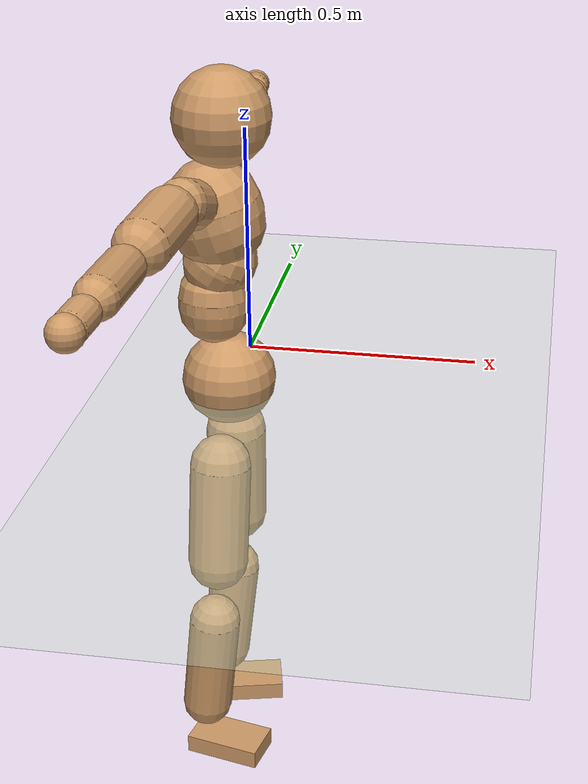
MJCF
<mujoco model="humanoid">
  <compiler coordinate="local"/>
  <default>
    <joint damping="0.0" armature="0.01" stiffness="0.0" limited="true"/>
    <geom conaffinity="1" condim="3" contype="7" margin="0.001" rgba="0.8 0.6 .4 1"/>
  </default>
  <asset>
    <texture type="skybox" builtin="gradient" rgb1=".4 .5 .6" rgb2="0 0 0" width="100" height="100"/>
    <texture builtin="flat" height="1278" mark="cross" markrgb="1 1 1" name="texgeom" random="0.01" rgb1="0.8 0.6 0.4" rgb2="0.8 0.6 0.4" type="cube" width="127"/>
    <texture builtin="checker" height="100" name="texplane" rgb1="0 0 0" rgb2="0.8 0.8 0.8" type="2d" width="100"/>
    <material name="MatPlane" reflectance="0.5" shininess="1" specular="1" texrepeat="60 60" texture="texplane"/>
    <material name="geom" texture="texgeom" texuniform="true"/>
  </asset>
  <worldbody>
    <light cutoff="100" diffuse="1 1 1" dir="-0 0 -1.3" directional="true" exponent="1" pos="0 0 1.3" specular=".1 .1 .1"/>
    <geom conaffinity="1" condim="3" name="floor" pos="0 0 0" rgba="0.8 0.9 0.8 1" size="100 100 .2" type="plane" material="MatPlane"/>
    <body name="Pelvis" pos="0.0002 -0.214 0.0298">
      <freejoint name="Pelvis"/>
      <geom type="sphere" contype="1" conaffinity="1" density="500" size="0.0981" pos="0.0000 0.0000 0.0000" name="Pelvis"/>
      <body name="L_Hip" pos="-0.0058 0.0759 -0.0921">
        <joint name="L_Hip_x" type="hinge" pos="0 0 0" axis="1 0 0" stiffness="800" damping="80" armature="0.02" range="-180.0000 180.0000"/>
        <joint name="L_Hip_y" type="hinge" pos="0 0 0" axis="0 1 0" stiffness="800" damping="80" armature="0.02" range="-180.0000 180.0000"/>
        <joint name="L_Hip_z" type="hinge" pos="0 0 0" axis="0 0 1" stiffness="800" damping="80" armature="0.02" range="-180.0000 180.0000"/>
        <geom type="capsule" contype="1" conaffinity="1" density="500" fromto="-0.0020 0.0062 -0.0742 -0.0079 0.0248 -0.2969" size="0.0647" name="L_Hip"/>
        <body name="L_Knee" pos="-0.0099 0.031 -0.3711">
          <joint name="L_Knee_x" type="hinge" pos="0 0 0" axis="1 0 0" stiffness="800" damping="80" armature="0.02" range="-180.0000 180.0000"/>
          <joint name="L_Knee_y" type="hinge" pos="0 0 0" axis="0 1 0" stiffness="800" damping="80" armature="0.02" range="-180.0000 180.0000"/>
          <joint name="L_Knee_z" type="hinge" pos="0 0 0" axis="0 0 1" stiffness="800" damping="80" armature="0.02" range="-180.0000 180.0000"/>
          <geom type="capsule" contype="1" conaffinity="1" density="500" fromto="-0.0091 -0.0022 -0.0774 -0.0365 -0.0089 -0.3095" size="0.0549" name="L_Knee"/>
          <body name="L_Ankle" pos="-0.0456 -0.0111 -0.3868">
            <joint name="L_Ankle_x" type="hinge" pos="0 0 0" axis="1 0 0" stiffness="800" damping="80" armature="0.02" range="-180.0000 180.0000"/>
            <joint name="L_Ankle_y" type="hinge" pos="0 0 0" axis="0 1 0" stiffness="800" damping="80" armature="0.02" range="-180.0000 180.0000"/>
            <joint name="L_Ankle_z" type="hinge" pos="0 0 0" axis="0 0 1" stiffness="800" damping="80" armature="0.02" range="-180.0000 180.0000"/>
            <geom type="box" contype="1" conaffinity="1" density="500" pos="0.0571 0.0141 -0.0276" size="0.0817 0.0487 0.0201" quat="0.9927 0.0000 0.0000 0.1204" name="L_Ankle"/>
            <body name="L_Toe" pos="0.1142 0.0281 -0.0551">
              <joint name="L_Toe_x" type="hinge" pos="0 0 0" axis="1 0 0" stiffness="500" damping="50" armature="0.02" range="-180.0000 180.0000"/>
              <joint name="L_Toe_y" type="hinge" pos="0 0 0" axis="0 1 0" stiffness="500" damping="50" armature="0.02" range="-180.0000 180.0000"/>
              <joint name="L_Toe_z" type="hinge" pos="0 0 0" axis="0 0 1" stiffness="500" damping="50" armature="0.02" range="-180.0000 180.0000"/>
              <geom type="box" contype="1" conaffinity="1" density="500" pos="0.0000 0.0000 0.0274" size="0.001 0.0024 0.001" quat="0.9920 0.0000 0.0000 0.1265" name="L_Toe"/>
            </body>
          </body>
        </body>
      </body>
      <body name="R_Hip" pos="-0.0033 -0.0734 -0.0917">
        <joint name="R_Hip_x" type="hinge" pos="0 0 0" axis="1 0 0" stiffness="800" damping="80" armature="0.02" range="-180.0000 180.0000"/>
        <joint name="R_Hip_y" type="hinge" pos="0 0 0" axis="0 1 0" stiffness="800" damping="80" armature="0.02" range="-180.0000 180.0000"/>
        <joint name="R_Hip_z" type="hinge" pos="0 0 0" axis="0 0 1" stiffness="800" damping="80" armature="0.02" range="-180.0000 180.0000"/>
        <geom type="capsule" contype="1" conaffinity="1" density="500" fromto="-0.0025 -0.0073 -0.0752 -0.0101 -0.0293 -0.3007" size="0.0639" name="R_Hip"/>
        <body name="R_Knee" pos="-0.0126 -0.0366 -0.3759">
          <joint name="R_Knee_x" type="hinge" pos="0 0 0" axis="1 0 0" stiffness="800" damping="80" armature="0.02" range="-180.0000 180.0000"/>
          <joint name="R_Knee_y" type="hinge" pos="0 0 0" axis="0 1 0" stiffness="800" damping="80" armature="0.02" range="-180.0000 180.0000"/>
          <joint name="R_Knee_z" type="hinge" pos="0 0 0" axis="0 0 1" stiffness="800" damping="80" armature="0.02" range="-180.0000 180.0000"/>
          <geom type="capsule" contype="1" conaffinity="1" density="500" fromto="-0.0089 0.0027 -0.0776 -0.0354 0.0108 -0.3103" size="0.055" name="R_Knee"/>
          <body name="R_Ankle" pos="-0.0443 0.0135 -0.3878">
            <joint name="R_Ankle_x" type="hinge" pos="0 0 0" axis="1 0 0" stiffness="800" damping="80" armature="0.02" range="-180.0000 180.0000"/>
            <joint name="R_Ankle_y" type="hinge" pos="0 0 0" axis="0 1 0" stiffness="800" damping="80" armature="0.02" range="-180.0000 180.0000"/>
            <joint name="R_Ankle_z" type="hinge" pos="0 0 0" axis="0 0 1" stiffness="800" damping="80" armature="0.02" range="-180.0000 180.0000"/>
            <geom type="box" contype="1" conaffinity="1" density="500" pos="0.0592 -0.0128 -0.0241" size="0.0834 0.0467 0.0206" quat="0.9943 0.0000 0.0000 -0.1063" name="R_Ankle"/>
            <body name="R_Toe" pos="0.1183 -0.0256 -0.0481">
              <joint name="R_Toe_x" type="hinge" pos="0 0 0" axis="1 0 0" stiffness="500" damping="50" armature="0.02" range="-180.0000 180.0000"/>
              <joint name="R_Toe_y" type="hinge" pos="0 0 0" axis="0 1 0" stiffness="500" damping="50" armature="0.02" range="-180.0000 180.0000"/>
              <joint name="R_Toe_z" type="hinge" pos="0 0 0" axis="0 0 1" stiffness="500" damping="50" armature="0.02" range="-180.0000 180.0000"/>
              <geom type="box" contype="1" conaffinity="1" density="500" pos="0.0000 0.0000 0.0255" size="0.0009 0.0023 0.0011" quat="0.9953 0.0000 0.0000 -0.0966" name="R_Toe"/>
            </body>
          </body>
        </body>
      </body>
      <body name="Torso" pos="-0.0256 -0.0023 0.1066">
        <joint name="Torso_x" type="hinge" pos="0 0 0" axis="1 0 0" stiffness="1000" damping="100" armature="0.02" range="-180.0000 180.0000"/>
        <joint name="Torso_y" type="hinge" pos="0 0 0" axis="0 1 0" stiffness="1000" damping="100" armature="0.02" range="-180.0000 180.0000"/>
        <joint name="Torso_z" type="hinge" pos="0 0 0" axis="0 0 1" stiffness="1000" damping="100" armature="0.02" range="-180.0000 180.0000"/>
        <geom type="capsule" contype="1" conaffinity="1" density="500" fromto="-0.0002 0.0021 0.0761 -0.0002 0.0014 0.0508" size="0.0739" name="Torso"/>
        <body name="Spine" pos="-0.0004 0.0034 0.1269">
          <joint name="Spine_x" type="hinge" pos="0 0 0" axis="1 0 0" stiffness="1000" damping="100" armature="0.02" range="-180.0000 180.0000"/>
          <joint name="Spine_y" type="hinge" pos="0 0 0" axis="0 1 0" stiffness="1000" damping="100" armature="0.02" range="-180.0000 180.0000"/>
          <joint name="Spine_z" type="hinge" pos="0 0 0" axis="0 0 1" stiffness="1000" damping="100" armature="0.02" range="-180.0000 180.0000"/>
          <geom type="capsule" contype="1" conaffinity="1" density="500" fromto="0.0176 0.0008 0.0299 0.0117 0.0005 0.0199" size="0.0739" name="Spine"/>
          <body name="Chest" pos="0.0293 0.0013 0.0498">
            <joint name="Chest_x" type="hinge" pos="0 0 0" axis="1 0 0" stiffness="1000" damping="100" armature="0.02" range="-180.0000 180.0000"/>
            <joint name="Chest_y" type="hinge" pos="0 0 0" axis="0 1 0" stiffness="1000" damping="100" armature="0.02" range="-180.0000 180.0000"/>
            <joint name="Chest_z" type="hinge" pos="0 0 0" axis="0 0 1" stiffness="1000" damping="100" armature="0.02" range="-180.0000 180.0000"/>
            <geom type="capsule" contype="1" conaffinity="1" density="500" fromto="-0.0258 -0.0007 0.0900 -0.0172 -0.0004 0.0600" size="0.0978" name="Chest"/>
            <body name="Neck" pos="-0.0514 -0.0012 0.2109">
              <joint name="Neck_x" type="hinge" pos="0 0 0" axis="1 0 0" stiffness="500" damping="50" armature="0.02" range="-180.0000 180.0000"/>
              <joint name="Neck_y" type="hinge" pos="0 0 0" axis="0 1 0" stiffness="500" damping="50" armature="0.02" range="-180.0000 180.0000"/>
              <joint name="Neck_z" type="hinge" pos="0 0 0" axis="0 0 1" stiffness="500" damping="50" armature="0.02" range="-180.0000 180.0000"/>
              <geom type="capsule" contype="1" conaffinity="1" density="500" fromto="0.0097 0.0006 0.0121 0.0387 0.0024 0.0484" size="0.0418" name="Neck"/>
              <body name="Head" pos="0.0483 0.0029 0.0605">
                <joint name="Head_x" type="hinge" pos="0 0 0" axis="1 0 0" stiffness="500" damping="50" armature="0.02" range="-180.0000 180.0000"/>
                <joint name="Head_y" type="hinge" pos="0 0 0" axis="0 1 0" stiffness="500" damping="50" armature="0.02" range="-180.0000 180.0000"/>
                <joint name="Head_z" type="hinge" pos="0 0 0" axis="0 0 1" stiffness="500" damping="50" armature="0.02" range="-180.0000 180.0000"/>
                <geom type="sphere" contype="1" conaffinity="1" density="500" size="0.0988" pos="0.0000 0.0000 0.0000" name="Head"/>
              </body>
            </body>
            <body name="L_Thorax" pos="-0.0364 0.0774 0.1205">
              <joint name="L_Thorax_x" type="hinge" pos="0 0 0" axis="1 0 0" stiffness="500" damping="50" armature="0.02" range="-180.0000 180.0000"/>
              <joint name="L_Thorax_y" type="hinge" pos="0 0 0" axis="0 1 0" stiffness="500" damping="50" armature="0.02" range="-180.0000 180.0000"/>
              <joint name="L_Thorax_z" type="hinge" pos="0 0 0" axis="0 0 1" stiffness="500" damping="50" armature="0.02" range="-180.0000 180.0000"/>
              <geom type="capsule" contype="1" conaffinity="1" density="500" fromto="-0.0018 0.0171 0.0063 -0.0070 0.0685 0.0251" size="0.051" name="L_Thorax"/>
              <body name="L_Shoulder" pos="-0.0088 0.0857 0.0313">
                <joint name="L_Shoulder_x" type="hinge" pos="0 0 0" axis="1 0 0" stiffness="500" damping="50" armature="0.02" range="-720.0000 720.0000"/>
                <joint name="L_Shoulder_y" type="hinge" pos="0 0 0" axis="0 1 0" stiffness="500" damping="50" armature="0.02" range="-720.0000 720.0000"/>
                <joint name="L_Shoulder_z" type="hinge" pos="0 0 0" axis="0 0 1" stiffness="500" damping="50" armature="0.02" range="-720.0000 720.0000"/>
                <geom type="capsule" contype="1" conaffinity="1" density="500" fromto="-0.0054 0.0496 -0.0021 -0.0216 0.1984 -0.0084" size="0.0526" name="L_Shoulder"/>
                <body name="L_Elbow" pos="-0.0271 0.248 -0.0105">
                  <joint name="L_Elbow_x" type="hinge" pos="0 0 0" axis="1 0 0" stiffness="500" damping="50" armature="0.02" range="-720.0000 720.0000"/>
                  <joint name="L_Elbow_y" type="hinge" pos="0 0 0" axis="0 1 0" stiffness="500" damping="50" armature="0.02" range="-720.0000 720.0000"/>
                  <joint name="L_Elbow_z" type="hinge" pos="0 0 0" axis="0 0 1" stiffness="500" damping="50" armature="0.02" range="-720.0000 720.0000"/>
                  <geom type="capsule" contype="1" conaffinity="1" density="500" fromto="-0.0000 0.0469 0.0017 -0.0000 0.1878 0.0070" size="0.04" name="L_Elbow"/>
                  <body name="L_Wrist" pos="0 0.2347 0.0087">
                    <joint name="L_Wrist_x" type="hinge" pos="0 0 0" axis="1 0 0" stiffness="300" damping="30" armature="0.02" range="-180.0000 180.0000"/>
                    <joint name="L_Wrist_y" type="hinge" pos="0 0 0" axis="0 1 0" stiffness="300" damping="30" armature="0.02" range="-180.0000 180.0000"/>
                    <joint name="L_Wrist_z" type="hinge" pos="0 0 0" axis="0 0 1" stiffness="300" damping="30" armature="0.02" range="-180.0000 180.0000"/>
                    <geom type="capsule" contype="1" conaffinity="1" density="500" fromto="-0.0027 0.0159 -0.0018 -0.0107 0.0637 -0.0074" size="0.0304" name="L_Wrist"/>
                    <body name="L_Hand" pos="-0.0133 0.0796 -0.0092">
                      <joint name="L_Hand_x" type="hinge" pos="0 0 0" axis="1 0 0" stiffness="300" damping="30" armature="0.02" range="-180.0000 180.0000"/>
                      <joint name="L_Hand_y" type="hinge" pos="0 0 0" axis="0 1 0" stiffness="300" damping="30" armature="0.02" range="-180.0000 180.0000"/>
                      <joint name="L_Hand_z" type="hinge" pos="0 0 0" axis="0 0 1" stiffness="300" damping="30" armature="0.02" range="-180.0000 180.0000"/>
                      <geom type="sphere" contype="1" conaffinity="1" density="500" size="0.0321" pos="0.0000 0.0000 0.0000" name="L_Hand"/>
                    </body>
                  </body>
                </body>
              </body>
            </body>
            <body name="R_Thorax" pos="-0.0414 -0.0794 0.1185">
              <joint name="R_Thorax_x" type="hinge" pos="0 0 0" axis="1 0 0" stiffness="500" damping="50" armature="0.02" range="-180.0000 180.0000"/>
              <joint name="R_Thorax_y" type="hinge" pos="0 0 0" axis="0 1 0" stiffness="500" damping="50" armature="0.02" range="-180.0000 180.0000"/>
              <joint name="R_Thorax_z" type="hinge" pos="0 0 0" axis="0 0 1" stiffness="500" damping="50" armature="0.02" range="-180.0000 180.0000"/>
              <geom type="capsule" contype="1" conaffinity="1" density="500" fromto="-0.0019 -0.0181 0.0067 -0.0077 -0.0725 0.0268" size="0.0504" name="R_Thorax"/>
              <body name="R_Shoulder" pos="-0.0096 -0.0906 0.0335">
                <joint name="R_Shoulder_x" type="hinge" pos="0 0 0" axis="1 0 0" stiffness="500" damping="50" armature="0.02" range="-720.0000 720.0000"/>
                <joint name="R_Shoulder_y" type="hinge" pos="0 0 0" axis="0 1 0" stiffness="500" damping="50" armature="0.02" range="-720.0000 720.0000"/>
                <joint name="R_Shoulder_z" type="hinge" pos="0 0 0" axis="0 0 1" stiffness="500" damping="50" armature="0.02" range="-720.0000 720.0000"/>
                <geom type="capsule" contype="1" conaffinity="1" density="500" fromto="-0.0042 -0.0488 -0.0027 -0.0167 -0.1953 -0.0110" size="0.0541" name="R_Shoulder"/>
                <body name="R_Elbow" pos="-0.0209 -0.2442 -0.0137">
                  <joint name="R_Elbow_x" type="hinge" pos="0 0 0" axis="1 0 0" stiffness="500" damping="50" armature="0.02" range="-720.0000 720.0000"/>
                  <joint name="R_Elbow_y" type="hinge" pos="0 0 0" axis="0 1 0" stiffness="500" damping="50" armature="0.02" range="-720.0000 720.0000"/>
                  <joint name="R_Elbow_z" type="hinge" pos="0 0 0" axis="0 0 1" stiffness="500" damping="50" armature="0.02" range="-720.0000 720.0000"/>
                  <geom type="capsule" contype="1" conaffinity="1" density="500" fromto="-0.0005 -0.0487 0.0020 -0.0021 -0.1948 0.0080" size="0.0404" name="R_Elbow"/>
                  <body name="R_Wrist" pos="-0.0026 -0.2435 0.01">
                    <joint name="R_Wrist_x" type="hinge" pos="0 0 0" axis="1 0 0" stiffness="300" damping="30" armature="0.02" range="-180.0000 180.0000"/>
                    <joint name="R_Wrist_y" type="hinge" pos="0 0 0" axis="0 1 0" stiffness="300" damping="30" armature="0.02" range="-180.0000 180.0000"/>
                    <joint name="R_Wrist_z" type="hinge" pos="0 0 0" axis="0 0 1" stiffness="300" damping="30" armature="0.02" range="-180.0000 180.0000"/>
                    <geom type="capsule" contype="1" conaffinity="1" density="500" fromto="-0.0021 -0.0161 -0.0014 -0.0083 -0.0646 -0.0055" size="0.0312" name="R_Wrist"/>
                    <body name="R_Hand" pos="-0.0103 -0.0807 -0.0069">
                      <joint name="R_Hand_x" type="hinge" pos="0 0 0" axis="1 0 0" stiffness="300" damping="30" armature="0.02" range="-180.0000 180.0000"/>
                      <joint name="R_Hand_y" type="hinge" pos="0 0 0" axis="0 1 0" stiffness="300" damping="30" armature="0.02" range="-180.0000 180.0000"/>
                      <joint name="R_Hand_z" type="hinge" pos="0 0 0" axis="0 0 1" stiffness="300" damping="30" armature="0.02" range="-180.0000 180.0000"/>
                      <geom type="sphere" contype="1" conaffinity="1" density="500" size="0.0325" pos="0.0000 0.0000 0.0000" name="R_Hand"/>
                    </body>
                  </body>
                </body>
              </body>
            </body>
          </body>
        </body>
      </body>
    </body>
  </worldbody>
  <actuator>
    <motor name="L_Hip_x" joint="L_Hip_x" gear="500"/>
    <motor name="L_Hip_y" joint="L_Hip_y" gear="500"/>
    <motor name="L_Hip_z" joint="L_Hip_z" gear="500"/>
    <motor name="L_Knee_x" joint="L_Knee_x" gear="500"/>
    <motor name="L_Knee_y" joint="L_Knee_y" gear="500"/>
    <motor name="L_Knee_z" joint="L_Knee_z" gear="500"/>
    <motor name="L_Ankle_x" joint="L_Ankle_x" gear="500"/>
    <motor name="L_Ankle_y" joint="L_Ankle_y" gear="500"/>
    <motor name="L_Ankle_z" joint="L_Ankle_z" gear="500"/>
    <motor name="L_Toe_x" joint="L_Toe_x" gear="500"/>
    <motor name="L_Toe_y" joint="L_Toe_y" gear="500"/>
    <motor name="L_Toe_z" joint="L_Toe_z" gear="500"/>
    <motor name="R_Hip_x" joint="R_Hip_x" gear="500"/>
    <motor name="R_Hip_y" joint="R_Hip_y" gear="500"/>
    <motor name="R_Hip_z" joint="R_Hip_z" gear="500"/>
    <motor name="R_Knee_x" joint="R_Knee_x" gear="500"/>
    <motor name="R_Knee_y" joint="R_Knee_y" gear="500"/>
    <motor name="R_Knee_z" joint="R_Knee_z" gear="500"/>
    <motor name="R_Ankle_x" joint="R_Ankle_x" gear="500"/>
    <motor name="R_Ankle_y" joint="R_Ankle_y" gear="500"/>
    <motor name="R_Ankle_z" joint="R_Ankle_z" gear="500"/>
    <motor name="R_Toe_x" joint="R_Toe_x" gear="500"/>
    <motor name="R_Toe_y" joint="R_Toe_y" gear="500"/>
    <motor name="R_Toe_z" joint="R_Toe_z" gear="500"/>
    <motor name="Torso_x" joint="Torso_x" gear="500"/>
    <motor name="Torso_y" joint="Torso_y" gear="500"/>
    <motor name="Torso_z" joint="Torso_z" gear="500"/>
    <motor name="Spine_x" joint="Spine_x" gear="500"/>
    <motor name="Spine_y" joint="Spine_y" gear="500"/>
    <motor name="Spine_z" joint="Spine_z" gear="500"/>
    <motor name="Chest_x" joint="Chest_x" gear="500"/>
    <motor name="Chest_y" joint="Chest_y" gear="500"/>
    <motor name="Chest_z" joint="Chest_z" gear="500"/>
    <motor name="Neck_x" joint="Neck_x" gear="500"/>
    <motor name="Neck_y" joint="Neck_y" gear="500"/>
    <motor name="Neck_z" joint="Neck_z" gear="500"/>
    <motor name="Head_x" joint="Head_x" gear="500"/>
    <motor name="Head_y" joint="Head_y" gear="500"/>
    <motor name="Head_z" joint="Head_z" gear="500"/>
    <motor name="L_Thorax_x" joint="L_Thorax_x" gear="500"/>
    <motor name="L_Thorax_y" joint="L_Thorax_y" gear="500"/>
    <motor name="L_Thorax_z" joint="L_Thorax_z" gear="500"/>
    <motor name="L_Shoulder_x" joint="L_Shoulder_x" gear="500"/>
    <motor name="L_Shoulder_y" joint="L_Shoulder_y" gear="500"/>
    <motor name="L_Shoulder_z" joint="L_Shoulder_z" gear="500"/>
    <motor name="L_Elbow_x" joint="L_Elbow_x" gear="500"/>
    <motor name="L_Elbow_y" joint="L_Elbow_y" gear="500"/>
    <motor name="L_Elbow_z" joint="L_Elbow_z" gear="500"/>
    <motor name="L_Wrist_x" joint="L_Wrist_x" gear="500"/>
    <motor name="L_Wrist_y" joint="L_Wrist_y" gear="500"/>
    <motor name="L_Wrist_z" joint="L_Wrist_z" gear="500"/>
    <motor name="L_Hand_x" joint="L_Hand_x" gear="500"/>
    <motor name="L_Hand_y" joint="L_Hand_y" gear="500"/>
    <motor name="L_Hand_z" joint="L_Hand_z" gear="500"/>
    <motor name="R_Thorax_x" joint="R_Thorax_x" gear="500"/>
    <motor name="R_Thorax_y" joint="R_Thorax_y" gear="500"/>
    <motor name="R_Thorax_z" joint="R_Thorax_z" gear="500"/>
    <motor name="R_Shoulder_x" joint="R_Shoulder_x" gear="500"/>
    <motor name="R_Shoulder_y" joint="R_Shoulder_y" gear="500"/>
    <motor name="R_Shoulder_z" joint="R_Shoulder_z" gear="500"/>
    <motor name="R_Elbow_x" joint="R_Elbow_x" gear="500"/>
    <motor name="R_Elbow_y" joint="R_Elbow_y" gear="500"/>
    <motor name="R_Elbow_z" joint="R_Elbow_z" gear="500"/>
    <motor name="R_Wrist_x" joint="R_Wrist_x" gear="500"/>
    <motor name="R_Wrist_y" joint="R_Wrist_y" gear="500"/>
    <motor name="R_Wrist_z" joint="R_Wrist_z" gear="500"/>
    <motor name="R_Hand_x" joint="R_Hand_x" gear="500"/>
    <motor name="R_Hand_y" joint="R_Hand_y" gear="500"/>
    <motor name="R_Hand_z" joint="R_Hand_z" gear="500"/>
  </actuator>
  <contact>
    <exclude body1="Torso" body2="Chest"/>
    <exclude body1="Head" body2="Chest"/>
    <exclude body1="R_Knee" body2="R_Toe"/>
    <exclude body1="R_Knee" body2="L_Ankle"/>
    <exclude body1="R_Knee" body2="L_Toe"/>
    <exclude body1="L_Knee" body2="L_Toe"/>
    <exclude body1="L_Knee" body2="R_Ankle"/>
    <exclude body1="L_Knee" body2="R_Toe"/>
    <exclude body1="L_Shoulder" body2="Chest"/>
    <exclude body1="R_Shoulder" body2="Chest"/>
  </contact>
  <sensor/>
  <size njmax="700" nconmax="700"/>
</mujoco>
